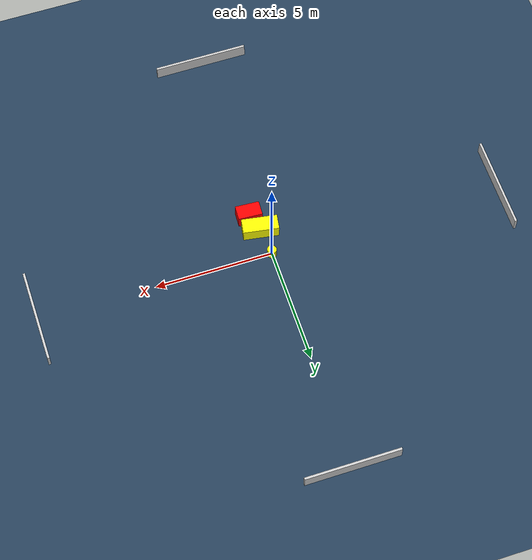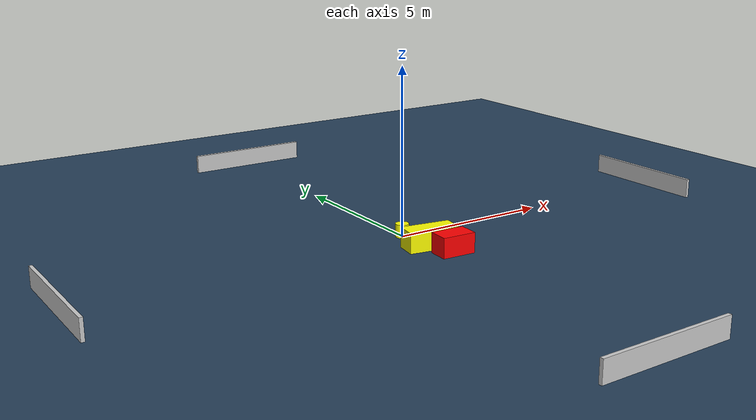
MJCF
<?xml version="1.0" ?>
<mujoco model="generated_environment">
  <option timestep="0.01" integrator="RK4" cone="elliptic"/>
  <default>
    <geom density="1"/>
  </default>
  <asset>
    <texture builtin="gradient" height="3072" name="skybox" rgb1="0.3 0.5 0.7" rgb2="0 0 0" type="skybox" width="512"/>
    <texture builtin="checker" height="300" name="groundplane" rgb1="0.2 0.3 0.4" rgb2="0.1 0.2 0.3" type="2d" width="300"/>
    <material name="groundplane" reflectance="0.2" texrepeat="5 5" texture="groundplane"/>
  </asset>
  <worldbody>
    <light dir="0 0 -1" directional="true" pos="0 0 1.5"/>
    <geom condim="3" friction="0.5 0.005 0.001" material="groundplane" name="floor" pos="0 0 0" size="0 0 0.05" type="plane"/>
    <body name="walls">
      <geom name="wall_1" condim="4" pos="-10.0 0.0 0.3" rgba="0.800000011920929 0.800000011920929 0.800000011920929 1.0" size="0.05 2.0 0.3" type="box"/>
      <geom name="wall_2" condim="4" pos="10.0 0.0 0.3" rgba="0.800000011920929 0.800000011920929 0.800000011920929 1.0" size="0.05 2.0 0.3" type="box"/>
      <geom name="wall_3" condim="4" pos="0.0 -10.0 0.3" rgba="0.800000011920929 0.800000011920929 0.800000011920929 1.0" size="2.0 0.05 0.3" type="box"/>
      <geom name="wall_4" condim="4" pos="0.0 10.0 0.3" rgba="0.800000011920929 0.800000011920929 0.800000011920929 1.0" size="2.0 0.05 0.3" type="box"/>
    </body>
    <body name="robot">
      <joint name="joint_x" type="slide" pos="0 0 0" axis="1 0 0"/>
      <joint name="joint_y" type="slide" pos="0 0 0" axis="0 1 0"/>
      <geom name="robot" type="cylinder" pos="0.0 0.0 0.2" size="0.2 0.2 0.0" mass="5.0" friction="1.0 0.005 0.0001" condim="4" rgba="1.0 1.0 0.0 1.0"/>
    </body>
    <body name="obstacle_1_movable">
      <geom name="obstacle_1_movable" condim="4" pos="0.12113215574028857 -1.1956361246084735 0.3" euler="0 0 80.79518050046266" friction="0.0 0.005 0.001" rgba="1.0 1.0 0.0 1.0" size="0.32523343760585266 0.7548035684995091 0.3" type="box" mass="0.1"/>
      <joint type="free"/>
    </body>
    <body name="obstacle_2_static">
      <geom name="obstacle_2_static" condim="4" pos="0.3722996503551856 -1.959999661632046 0.3" euler="0 0 266.7511015028363" friction="0.0 0.005 0.001" rgba="1.0 0.0 0.0 1.0" size="0.3111169227607148 0.5117623703267105 0.3" type="box"/>
    </body>
  </worldbody>
  <actuator>
    <motor name="actuator_x" joint="joint_x" gear="1" ctrlrange="-1 1"/>
    <motor name="actuator_y" joint="joint_y" gear="1" ctrlrange="-1 1"/>
  </actuator>
</mujoco>
